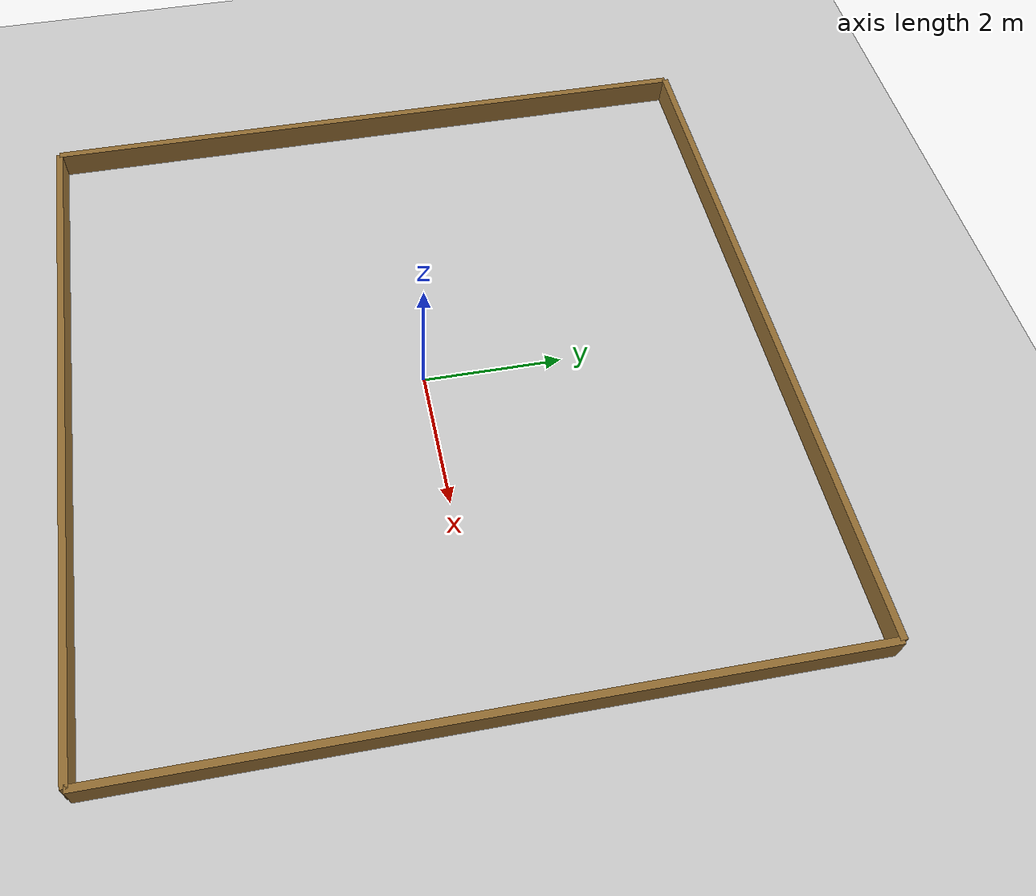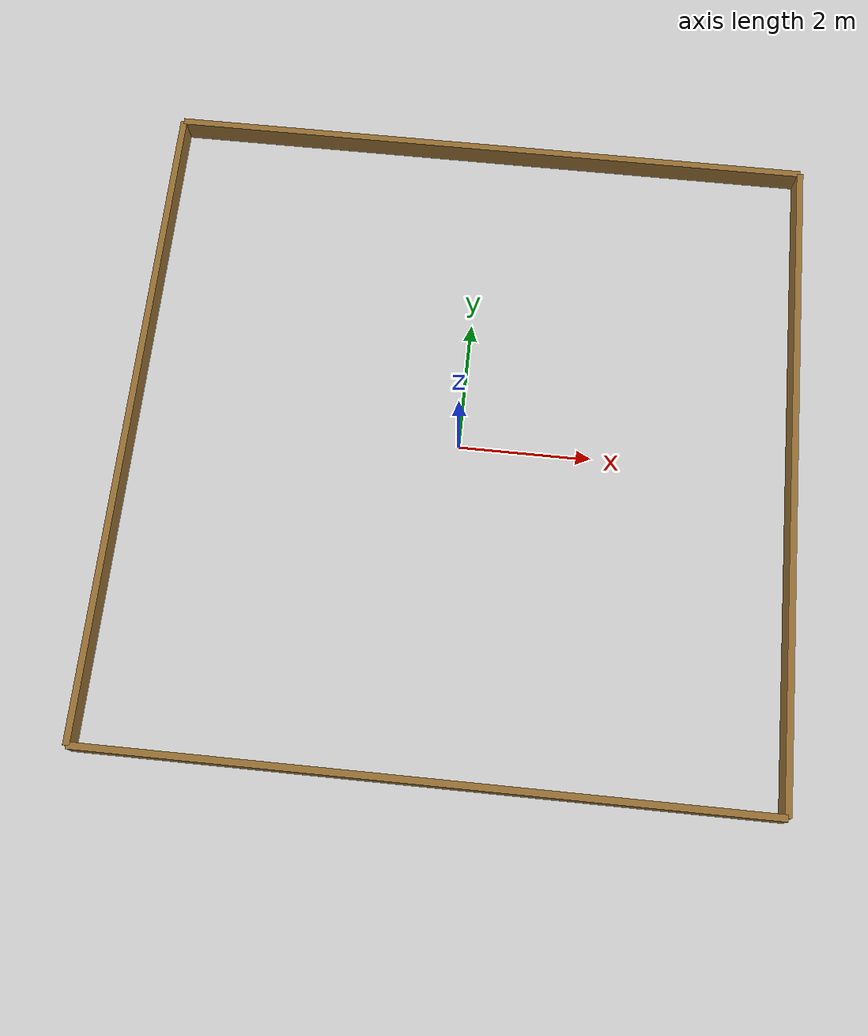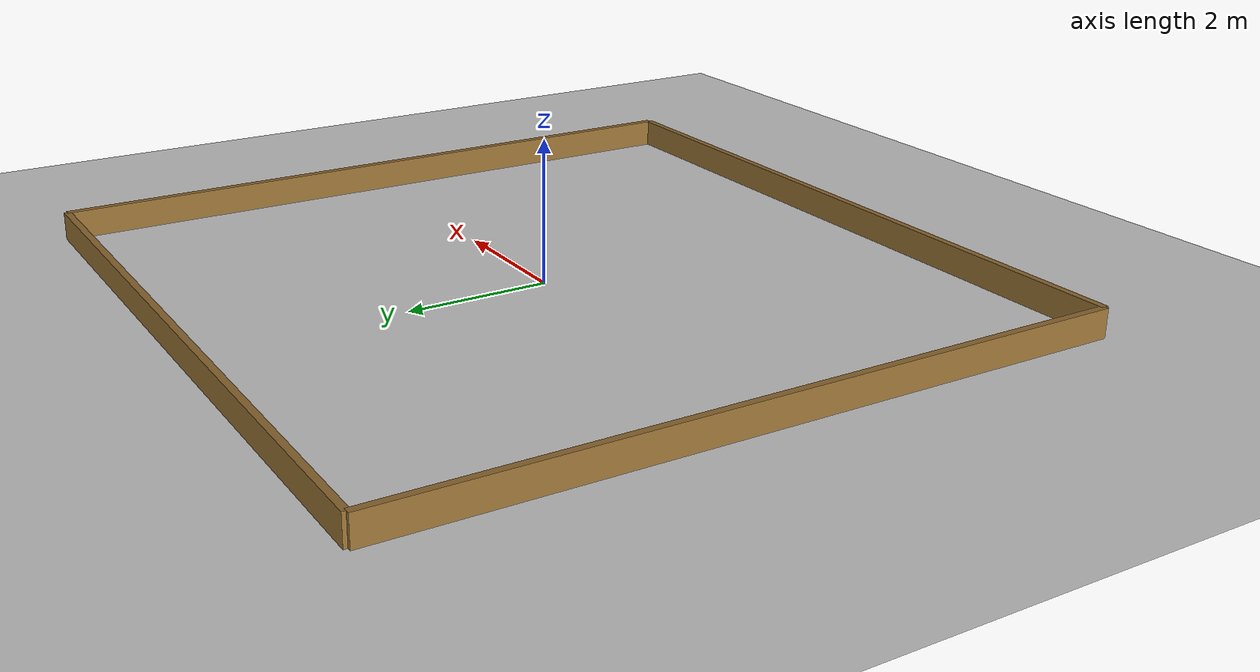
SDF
<?xml version="1.0" ?>
<sdf version="1.8">

  <world name="arena10">

    <!-- Physics configuration -->
    <physics name="default_physics" type="ode">
      <max_step_size>0.001</max_step_size>
      <real_time_factor>1.0</real_time_factor>
      <real_time_update_rate>1000</real_time_update_rate>
    </physics>

    <!-- Core Gazebo Sim systems    -->
    <!-- (NO ROS PLUGINS HERE)     -->

    <plugin name="gz::sim::systems::Physics"
            filename="gz-sim-physics-system"/>

    <plugin name="gz::sim::systems::UserCommands"
            filename="gz-sim-user-commands-system"/>

    <plugin name="gz::sim::systems::SceneBroadcaster"
            filename="gz-sim-scene-broadcaster-system"/>

    <plugin name="gz::sim::systems::Contact"
            filename="gz-sim-contact-system"/>

    <plugin name="gz::sim::systems::Sensors"
            filename="gz-sim-sensors-system">
      <render_engine>ogre2</render_engine>
    </plugin>

    <!-- Environment settings  -->
    <gravity>0 0 -9.81</gravity>
    <magnetic_field>6e-06 2.3e-05 -4.2e-05</magnetic_field>
    <atmosphere type="adiabatic"/>

    <scene>
      <ambient>0.4 0.4 0.4 1</ambient>
      <background>0.7 0.7 0.7 1</background>
      <shadows>true</shadows>
    </scene>

    <!-- Ground plane          -->
    <model name="ground_plane">
      <static>true</static>

      <link name="link">

        <collision name="collision">
          <geometry>
            <plane>
              <normal>0 0 1</normal>
              <size>10 10</size>
            </plane>
          </geometry>
        </collision>

        <visual name="visual">
          <geometry>
            <plane>
              <normal>0 0 1</normal>
              <size>10 10</size>
            </plane>
          </geometry>
          <material>
            <ambient>0.8 0.8 0.8 1</ambient>
            <diffuse>0.8 0.8 0.8 1</diffuse>
            <specular>0.2 0.2 0.2 1</specular>
          </material>
        </visual>

      </link>
    </model>

    <!-- Arena walls           -->
    <model name="arena_walls">
      <static>true</static>

      <link name="wall_x_pos">
        <pose>5 0 0.2 0 0 0</pose>
        <collision name="collision">
          <geometry>
            <box>
              <size>0.1 10 0.4</size>
            </box>
          </geometry>
        </collision>
        <visual name="visual">
          <geometry>
            <box>
              <size>0.1 10 0.4</size>
            </box>
          </geometry>
          <material>
            <ambient>0.58 0.43 0.2 1.0</ambient>
            <diffuse>0.58 0.43 0.2 1.0</diffuse>
            <specular>0.1 0.1 0.1 1.0</specular>
          </material>
        </visual>
      </link>

      <link name="wall_x_neg">
        <pose>-5 0 0.2 0 0 0</pose>
        <collision name="collision">
          <geometry>
            <box>
              <size>0.1 10 0.4</size>
            </box>
          </geometry>
        </collision>
        <visual name="visual">
          <geometry>
            <box>
              <size>0.1 10 0.4</size>
            </box>
          </geometry>
          <material>
            <ambient>0.58 0.43 0.2 1.0</ambient>
            <diffuse>0.58 0.43 0.2 1.0</diffuse>
            <specular>0.1 0.1 0.1 1.0</specular>
          </material>
        </visual>
      </link>

      <link name="wall_y_pos">
        <pose>0 5 0.2 0 0 0</pose>
        <collision name="collision">
          <geometry>
            <box>
              <size>10 0.1 0.4</size>
            </box>
          </geometry>
        </collision>
        <visual name="visual">
          <geometry>
            <box>
              <size>10 0.1 0.4</size>
            </box>
          </geometry>
          <material>
            <ambient>0.58 0.43 0.2 1.0</ambient>
            <diffuse>0.58 0.43 0.2 1.0</diffuse>
            <specular>0.1 0.1 0.1 1.0</specular>
          </material>
        </visual>
      </link>

      <link name="wall_y_neg">
        <pose>0 -5 0.2 0 0 0</pose>
        <collision name="collision">
          <geometry>
            <box>
              <size>10 0.1 0.4</size>
            </box>
          </geometry>
        </collision>
        <visual name="visual">
          <geometry>
            <box>
              <size>10 0.1 0.4</size>
            </box>
          </geometry>
          <material>
            <ambient>0.58 0.43 0.2 1.0</ambient>
            <diffuse>0.58 0.43 0.2 1.0</diffuse>
            <specular>0.1 0.1 0.1 1.0</specular>
          </material>
        </visual>
      </link>
    </model>

    <!-- External camera       -->
    <include>
      <uri>model://external_camera</uri>
      <pose>-6 -6 3 0 0.3398 0.7854</pose>
    </include>

    <!-- Lighting              -->
    <light name="sun" type="directional">
      <pose>0 0 10 0 0 0</pose>
      <cast_shadows>true</cast_shadows>
      <intensity>1.0</intensity>
      <direction>-0.5 0.1 -0.9</direction>
    </light>

  </world>
</sdf>

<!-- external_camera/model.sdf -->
<sdf version="1.6">
  <model name="external_camera">
    <static>true</static>
    <pose>0 0 0 0 0 0</pose>
    <link name="link">
      <sensor name="camera" type="camera">
        <camera>
          <horizontal_fov>1.5708</horizontal_fov> <!-- 90 degrees -->
          <image>
            <width>1280</width>
            <height>720</height>
          </image>
          <clip>
            <near>0.1</near>
            <far>100</far>
          </clip>
        </camera>
        <always_on>1</always_on>
        <update_rate>5</update_rate>
        <visualize>false</visualize>
        <topic>external_camera/image_raw</topic>
      </sensor>
      <sensor name="depth_camera" type="depth_camera">
        <camera>
          <horizontal_fov>1.5708</horizontal_fov>
          <image><width>1280</width><height>720</height><format>R_FLOAT32</format></image>
          <clip><near>0.1</near><far>100</far></clip>
        </camera>
        <always_on>0</always_on>
        <update_rate>5</update_rate>
        <visualize>false</visualize>
        <topic>external_camera/depth</topic>
      </sensor>
      <sensor name="segmentation_camera" type="segmentation">
        <camera>
          <segmentation_type>semantic</segmentation_type>
          <horizontal_fov>1.5708</horizontal_fov>
          <image>
            <width>1280</width>
            <height>720</height>
          </image>
          <clip>
            <near>0.1</near>
            <far>100</far>
          </clip>
        </camera>
        <always_on>0</always_on>
        <update_rate>1</update_rate>
        <visualize>false</visualize>
        <topic>external_camera/segmentation</topic>
      </sensor>
    </link>
  </model>
</sdf>
